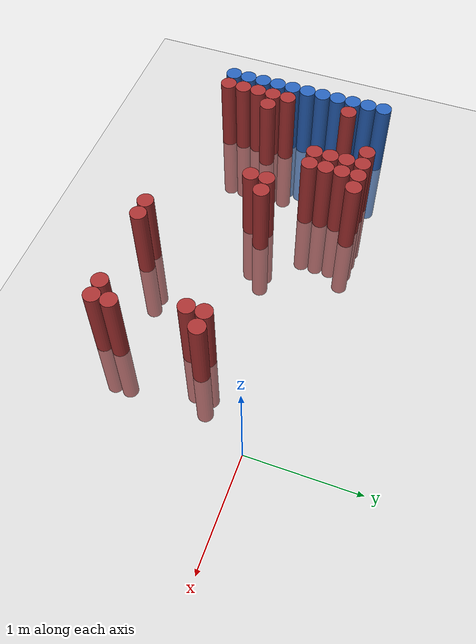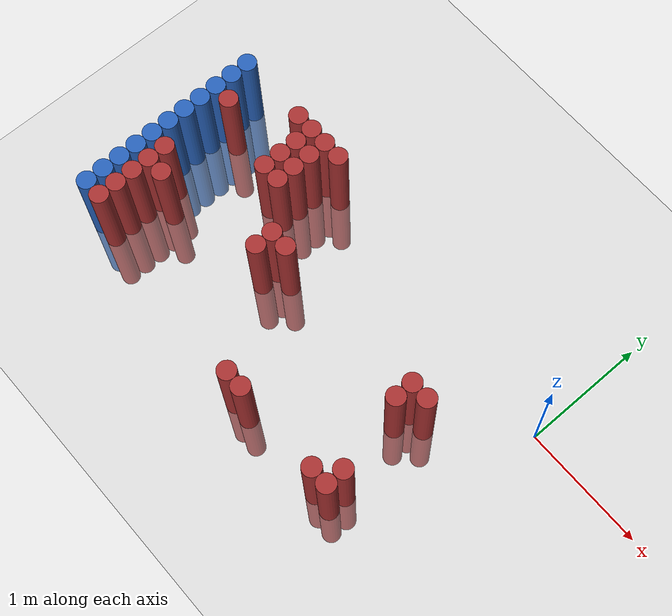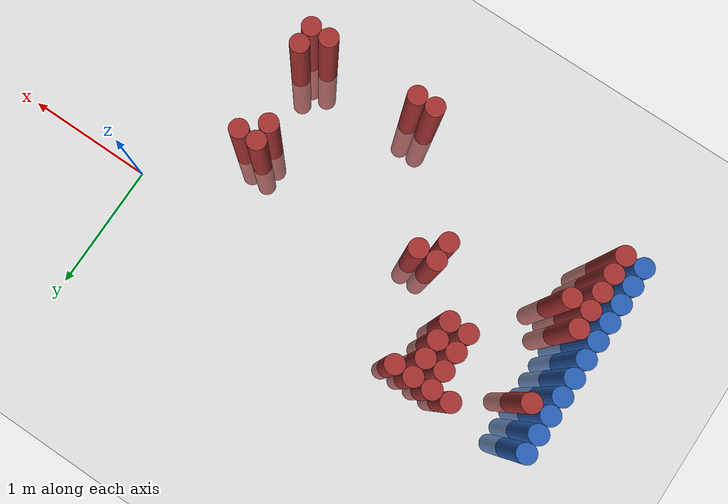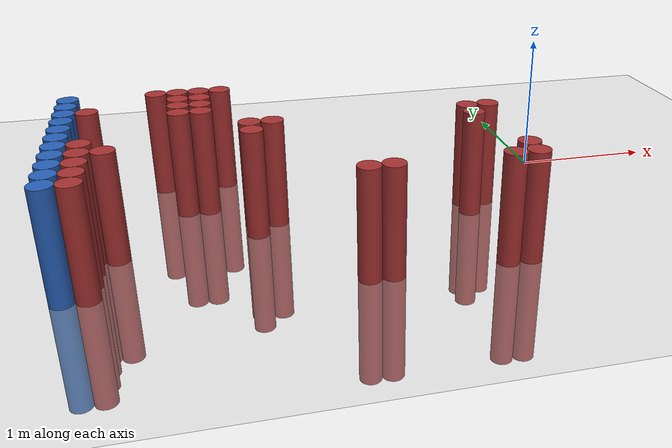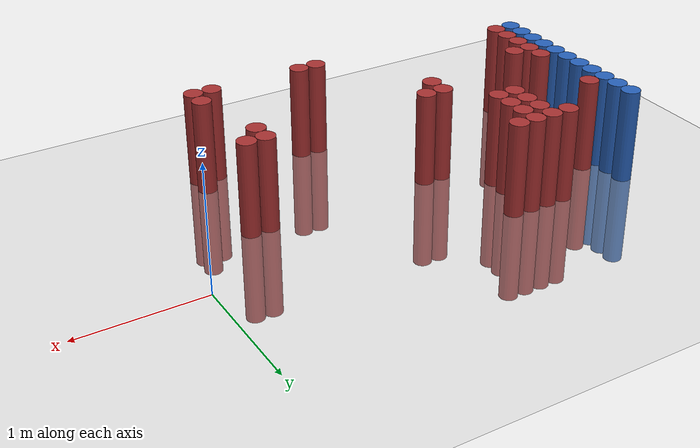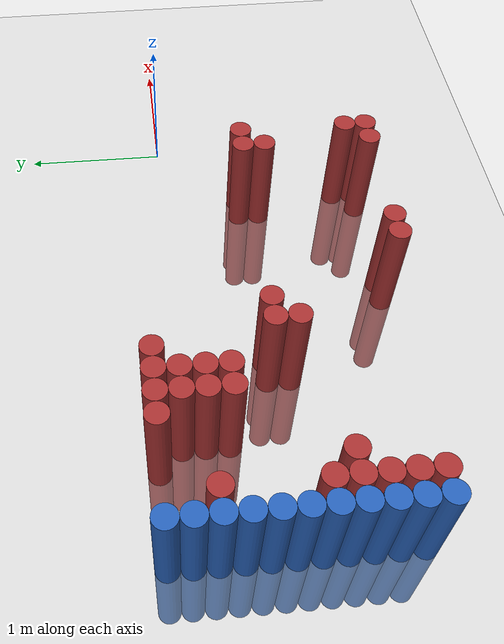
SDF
<sdf version="1.6">
 <world name="default">
  <model name="ground_plane">
   <static>1</static>
   <link name="link">
    <collision name="collision">
     <geometry><plane><normal>0 0 1</normal><size>100 100</size></plane></geometry>
     <surface><friction><ode><mu>100</mu><mu2>50</mu2></ode></friction></surface>
    </collision>
    <visual name="visual">
     <cast_shadows>0</cast_shadows>
     <geometry><plane><normal>0 0 1</normal><size>100 100</size></plane></geometry>
     <material>
      <script><uri>file://media/materials/scripts/gazebo.material</uri><name>Gazebo/Grey</name></script>
     </material>
    </visual>
   </link>
  </model>
  <model name="unit_cylinder_97">
   <static>1</static>
   <pose>-3.425000 -1.325000 0.000000 0.000000 0.000000 0.000000</pose>
   <link name="link">
    <inertial>
     <mass>1</mass>
     <inertia><ixx>0.145833</ixx><ixy>0</ixy><ixz>0</ixz><iyy>0.145833</iyy><iyz>0</iyz><izz>0.125</izz></inertia>
    </inertial>
    <collision name="collision">
     <geometry><cylinder><radius>0.075000</radius><length>1.5</length></cylinder></geometry>
    </collision>
    <visual name="visual">
     <geometry><cylinder><radius>0.075000</radius><length>1.5</length></cylinder></geometry>
     <material>
      <ambient>0.152000 0.379000 0.720000 1</ambient>
      <diffuse>0.152000 0.379000 0.720000 1</diffuse>
     </material>
     <material>
      <script><name>Gazebo/Grey</name><uri>file://media/materials/scripts/gazebo.material</uri></script>
     </material>
    </visual>
   </link>
  </model>
  <model name="unit_cylinder_99">
   <static>1</static>
   <pose>-3.425000 -1.175000 0.000000 0.000000 0.000000 0.000000</pose>
   <link name="link">
    <inertial>
     <mass>1</mass>
     <inertia><ixx>0.145833</ixx><ixy>0</ixy><ixz>0</ixz><iyy>0.145833</iyy><iyz>0</iyz><izz>0.125</izz></inertia>
    </inertial>
    <collision name="collision">
     <geometry><cylinder><radius>0.075000</radius><length>1.5</length></cylinder></geometry>
    </collision>
    <visual name="visual">
     <geometry><cylinder><radius>0.075000</radius><length>1.5</length></cylinder></geometry>
     <material>
      <ambient>0.152000 0.379000 0.720000 1</ambient>
      <diffuse>0.152000 0.379000 0.720000 1</diffuse>
     </material>
     <material>
      <script><name>Gazebo/Grey</name><uri>file://media/materials/scripts/gazebo.material</uri></script>
     </material>
    </visual>
   </link>
  </model>
  <model name="unit_cylinder_101">
   <static>1</static>
   <pose>-3.425000 -1.025000 0.000000 0.000000 0.000000 0.000000</pose>
   <link name="link">
    <inertial>
     <mass>1</mass>
     <inertia><ixx>0.145833</ixx><ixy>0</ixy><ixz>0</ixz><iyy>0.145833</iyy><iyz>0</iyz><izz>0.125</izz></inertia>
    </inertial>
    <collision name="collision">
     <geometry><cylinder><radius>0.075000</radius><length>1.5</length></cylinder></geometry>
    </collision>
    <visual name="visual">
     <geometry><cylinder><radius>0.075000</radius><length>1.5</length></cylinder></geometry>
     <material>
      <ambient>0.152000 0.379000 0.720000 1</ambient>
      <diffuse>0.152000 0.379000 0.720000 1</diffuse>
     </material>
     <material>
      <script><name>Gazebo/Grey</name><uri>file://media/materials/scripts/gazebo.material</uri></script>
     </material>
    </visual>
   </link>
  </model>
  <model name="unit_cylinder_103">
   <static>1</static>
   <pose>-3.425000 -0.875000 0.000000 0.000000 0.000000 0.000000</pose>
   <link name="link">
    <inertial>
     <mass>1</mass>
     <inertia><ixx>0.145833</ixx><ixy>0</ixy><ixz>0</ixz><iyy>0.145833</iyy><iyz>0</iyz><izz>0.125</izz></inertia>
    </inertial>
    <collision name="collision">
     <geometry><cylinder><radius>0.075000</radius><length>1.5</length></cylinder></geometry>
    </collision>
    <visual name="visual">
     <geometry><cylinder><radius>0.075000</radius><length>1.5</length></cylinder></geometry>
     <material>
      <ambient>0.152000 0.379000 0.720000 1</ambient>
      <diffuse>0.152000 0.379000 0.720000 1</diffuse>
     </material>
     <material>
      <script><name>Gazebo/Grey</name><uri>file://media/materials/scripts/gazebo.material</uri></script>
     </material>
    </visual>
   </link>
  </model>
  <model name="unit_cylinder_105">
   <static>1</static>
   <pose>-3.425000 -0.725000 0.000000 0.000000 0.000000 0.000000</pose>
   <link name="link">
    <inertial>
     <mass>1</mass>
     <inertia><ixx>0.145833</ixx><ixy>0</ixy><ixz>0</ixz><iyy>0.145833</iyy><iyz>0</iyz><izz>0.125</izz></inertia>
    </inertial>
    <collision name="collision">
     <geometry><cylinder><radius>0.075000</radius><length>1.5</length></cylinder></geometry>
    </collision>
    <visual name="visual">
     <geometry><cylinder><radius>0.075000</radius><length>1.5</length></cylinder></geometry>
     <material>
      <ambient>0.152000 0.379000 0.720000 1</ambient>
      <diffuse>0.152000 0.379000 0.720000 1</diffuse>
     </material>
     <material>
      <script><name>Gazebo/Grey</name><uri>file://media/materials/scripts/gazebo.material</uri></script>
     </material>
    </visual>
   </link>
  </model>
  <model name="unit_cylinder_107">
   <static>1</static>
   <pose>-3.425000 -0.575000 0.000000 0.000000 0.000000 0.000000</pose>
   <link name="link">
    <inertial>
     <mass>1</mass>
     <inertia><ixx>0.145833</ixx><ixy>0</ixy><ixz>0</ixz><iyy>0.145833</iyy><iyz>0</iyz><izz>0.125</izz></inertia>
    </inertial>
    <collision name="collision">
     <geometry><cylinder><radius>0.075000</radius><length>1.5</length></cylinder></geometry>
    </collision>
    <visual name="visual">
     <geometry><cylinder><radius>0.075000</radius><length>1.5</length></cylinder></geometry>
     <material>
      <ambient>0.152000 0.379000 0.720000 1</ambient>
      <diffuse>0.152000 0.379000 0.720000 1</diffuse>
     </material>
     <material>
      <script><name>Gazebo/Grey</name><uri>file://media/materials/scripts/gazebo.material</uri></script>
     </material>
    </visual>
   </link>
  </model>
  <model name="unit_cylinder_109">
   <static>1</static>
   <pose>-3.425000 -0.425000 0.000000 0.000000 0.000000 0.000000</pose>
   <link name="link">
    <inertial>
     <mass>1</mass>
     <inertia><ixx>0.145833</ixx><ixy>0</ixy><ixz>0</ixz><iyy>0.145833</iyy><iyz>0</iyz><izz>0.125</izz></inertia>
    </inertial>
    <collision name="collision">
     <geometry><cylinder><radius>0.075000</radius><length>1.5</length></cylinder></geometry>
    </collision>
    <visual name="visual">
     <geometry><cylinder><radius>0.075000</radius><length>1.5</length></cylinder></geometry>
     <material>
      <ambient>0.152000 0.379000 0.720000 1</ambient>
      <diffuse>0.152000 0.379000 0.720000 1</diffuse>
     </material>
     <material>
      <script><name>Gazebo/Grey</name><uri>file://media/materials/scripts/gazebo.material</uri></script>
     </material>
    </visual>
   </link>
  </model>
  <model name="unit_cylinder_111">
   <static>1</static>
   <pose>-3.425000 -0.275000 0.000000 0.000000 0.000000 0.000000</pose>
   <link name="link">
    <inertial>
     <mass>1</mass>
     <inertia><ixx>0.145833</ixx><ixy>0</ixy><ixz>0</ixz><iyy>0.145833</iyy><iyz>0</iyz><izz>0.125</izz></inertia>
    </inertial>
    <collision name="collision">
     <geometry><cylinder><radius>0.075000</radius><length>1.5</length></cylinder></geometry>
    </collision>
    <visual name="visual">
     <geometry><cylinder><radius>0.075000</radius><length>1.5</length></cylinder></geometry>
     <material>
      <ambient>0.152000 0.379000 0.720000 1</ambient>
      <diffuse>0.152000 0.379000 0.720000 1</diffuse>
     </material>
     <material>
      <script><name>Gazebo/Grey</name><uri>file://media/materials/scripts/gazebo.material</uri></script>
     </material>
    </visual>
   </link>
  </model>
  <model name="unit_cylinder_113">
   <static>1</static>
   <pose>-3.425000 -0.125000 0.000000 0.000000 0.000000 0.000000</pose>
   <link name="link">
    <inertial>
     <mass>1</mass>
     <inertia><ixx>0.145833</ixx><ixy>0</ixy><ixz>0</ixz><iyy>0.145833</iyy><iyz>0</iyz><izz>0.125</izz></inertia>
    </inertial>
    <collision name="collision">
     <geometry><cylinder><radius>0.075000</radius><length>1.5</length></cylinder></geometry>
    </collision>
    <visual name="visual">
     <geometry><cylinder><radius>0.075000</radius><length>1.5</length></cylinder></geometry>
     <material>
      <ambient>0.152000 0.379000 0.720000 1</ambient>
      <diffuse>0.152000 0.379000 0.720000 1</diffuse>
     </material>
     <material>
      <script><name>Gazebo/Grey</name><uri>file://media/materials/scripts/gazebo.material</uri></script>
     </material>
    </visual>
   </link>
  </model>
  <model name="unit_cylinder_115">
   <static>1</static>
   <pose>-3.425000 0.025000 0.000000 0.000000 0.000000 0.000000</pose>
   <link name="link">
    <inertial>
     <mass>1</mass>
     <inertia><ixx>0.145833</ixx><ixy>0</ixy><ixz>0</ixz><iyy>0.145833</iyy><iyz>0</iyz><izz>0.125</izz></inertia>
    </inertial>
    <collision name="collision">
     <geometry><cylinder><radius>0.075000</radius><length>1.5</length></cylinder></geometry>
    </collision>
    <visual name="visual">
     <geometry><cylinder><radius>0.075000</radius><length>1.5</length></cylinder></geometry>
     <material>
      <ambient>0.152000 0.379000 0.720000 1</ambient>
      <diffuse>0.152000 0.379000 0.720000 1</diffuse>
     </material>
     <material>
      <script><name>Gazebo/Grey</name><uri>file://media/materials/scripts/gazebo.material</uri></script>
     </material>
    </visual>
   </link>
  </model>
  <model name="unit_cylinder_117">
   <static>1</static>
   <pose>-3.425000 0.175000 0.000000 0.000000 0.000000 0.000000</pose>
   <link name="link">
    <inertial>
     <mass>1</mass>
     <inertia><ixx>0.145833</ixx><ixy>0</ixy><ixz>0</ixz><iyy>0.145833</iyy><iyz>0</iyz><izz>0.125</izz></inertia>
    </inertial>
    <collision name="collision">
     <geometry><cylinder><radius>0.075000</radius><length>1.5</length></cylinder></geometry>
    </collision>
    <visual name="visual">
     <geometry><cylinder><radius>0.075000</radius><length>1.5</length></cylinder></geometry>
     <material>
      <ambient>0.152000 0.379000 0.720000 1</ambient>
      <diffuse>0.152000 0.379000 0.720000 1</diffuse>
     </material>
     <material>
      <script><name>Gazebo/Grey</name><uri>file://media/materials/scripts/gazebo.material</uri></script>
     </material>
    </visual>
   </link>
  </model>
  <model name="unit_cylinder_212">
   <static>1</static>
   <pose>-3.425000 -1.325000 0.000000 0.000000 0.000000 0.000000</pose>
   <link name="link">
    <inertial>
     <mass>1</mass>
     <inertia><ixx>0.145833</ixx><ixy>0</ixy><ixz>0</ixz><iyy>0.145833</iyy><iyz>0</iyz><izz>0.125</izz></inertia>
    </inertial>
    <collision name="collision">
     <geometry><cylinder><radius>0.075000</radius><length>1.5</length></cylinder></geometry>
    </collision>
    <visual name="visual">
     <geometry><cylinder><radius>0.075000</radius><length>1.5</length></cylinder></geometry>
     <material>
      <ambient>0.152000 0.379000 0.720000 1</ambient>
      <diffuse>0.152000 0.379000 0.720000 1</diffuse>
     </material>
     <material>
      <script><name>Gazebo/Grey</name><uri>file://media/materials/scripts/gazebo.material</uri></script>
     </material>
    </visual>
   </link>
  </model>
  <model name="unit_cylinder_213">
   <static>1</static>
   <pose>-3.425000 -1.175000 0.000000 0.000000 0.000000 0.000000</pose>
   <link name="link">
    <inertial>
     <mass>1</mass>
     <inertia><ixx>0.145833</ixx><ixy>0</ixy><ixz>0</ixz><iyy>0.145833</iyy><iyz>0</iyz><izz>0.125</izz></inertia>
    </inertial>
    <collision name="collision">
     <geometry><cylinder><radius>0.075000</radius><length>1.5</length></cylinder></geometry>
    </collision>
    <visual name="visual">
     <geometry><cylinder><radius>0.075000</radius><length>1.5</length></cylinder></geometry>
     <material>
      <ambient>0.152000 0.379000 0.720000 1</ambient>
      <diffuse>0.152000 0.379000 0.720000 1</diffuse>
     </material>
     <material>
      <script><name>Gazebo/Grey</name><uri>file://media/materials/scripts/gazebo.material</uri></script>
     </material>
    </visual>
   </link>
  </model>
  <model name="unit_cylinder_214">
   <static>1</static>
   <pose>-3.425000 -1.025000 0.000000 0.000000 0.000000 0.000000</pose>
   <link name="link">
    <inertial>
     <mass>1</mass>
     <inertia><ixx>0.145833</ixx><ixy>0</ixy><ixz>0</ixz><iyy>0.145833</iyy><iyz>0</iyz><izz>0.125</izz></inertia>
    </inertial>
    <collision name="collision">
     <geometry><cylinder><radius>0.075000</radius><length>1.5</length></cylinder></geometry>
    </collision>
    <visual name="visual">
     <geometry><cylinder><radius>0.075000</radius><length>1.5</length></cylinder></geometry>
     <material>
      <ambient>0.152000 0.379000 0.720000 1</ambient>
      <diffuse>0.152000 0.379000 0.720000 1</diffuse>
     </material>
     <material>
      <script><name>Gazebo/Grey</name><uri>file://media/materials/scripts/gazebo.material</uri></script>
     </material>
    </visual>
   </link>
  </model>
  <model name="unit_cylinder_215">
   <static>1</static>
   <pose>-3.425000 -0.875000 0.000000 0.000000 0.000000 0.000000</pose>
   <link name="link">
    <inertial>
     <mass>1</mass>
     <inertia><ixx>0.145833</ixx><ixy>0</ixy><ixz>0</ixz><iyy>0.145833</iyy><iyz>0</iyz><izz>0.125</izz></inertia>
    </inertial>
    <collision name="collision">
     <geometry><cylinder><radius>0.075000</radius><length>1.5</length></cylinder></geometry>
    </collision>
    <visual name="visual">
     <geometry><cylinder><radius>0.075000</radius><length>1.5</length></cylinder></geometry>
     <material>
      <ambient>0.152000 0.379000 0.720000 1</ambient>
      <diffuse>0.152000 0.379000 0.720000 1</diffuse>
     </material>
     <material>
      <script><name>Gazebo/Grey</name><uri>file://media/materials/scripts/gazebo.material</uri></script>
     </material>
    </visual>
   </link>
  </model>
  <model name="unit_cylinder_216">
   <static>1</static>
   <pose>-3.425000 -0.725000 0.000000 0.000000 0.000000 0.000000</pose>
   <link name="link">
    <inertial>
     <mass>1</mass>
     <inertia><ixx>0.145833</ixx><ixy>0</ixy><ixz>0</ixz><iyy>0.145833</iyy><iyz>0</iyz><izz>0.125</izz></inertia>
    </inertial>
    <collision name="collision">
     <geometry><cylinder><radius>0.075000</radius><length>1.5</length></cylinder></geometry>
    </collision>
    <visual name="visual">
     <geometry><cylinder><radius>0.075000</radius><length>1.5</length></cylinder></geometry>
     <material>
      <ambient>0.152000 0.379000 0.720000 1</ambient>
      <diffuse>0.152000 0.379000 0.720000 1</diffuse>
     </material>
     <material>
      <script><name>Gazebo/Grey</name><uri>file://media/materials/scripts/gazebo.material</uri></script>
     </material>
    </visual>
   </link>
  </model>
  <model name="unit_cylinder_217">
   <static>1</static>
   <pose>-3.425000 -0.575000 0.000000 0.000000 0.000000 0.000000</pose>
   <link name="link">
    <inertial>
     <mass>1</mass>
     <inertia><ixx>0.145833</ixx><ixy>0</ixy><ixz>0</ixz><iyy>0.145833</iyy><iyz>0</iyz><izz>0.125</izz></inertia>
    </inertial>
    <collision name="collision">
     <geometry><cylinder><radius>0.075000</radius><length>1.5</length></cylinder></geometry>
    </collision>
    <visual name="visual">
     <geometry><cylinder><radius>0.075000</radius><length>1.5</length></cylinder></geometry>
     <material>
      <ambient>0.152000 0.379000 0.720000 1</ambient>
      <diffuse>0.152000 0.379000 0.720000 1</diffuse>
     </material>
     <material>
      <script><name>Gazebo/Grey</name><uri>file://media/materials/scripts/gazebo.material</uri></script>
     </material>
    </visual>
   </link>
  </model>
  <model name="unit_cylinder_218">
   <static>1</static>
   <pose>-3.425000 -0.425000 0.000000 0.000000 0.000000 0.000000</pose>
   <link name="link">
    <inertial>
     <mass>1</mass>
     <inertia><ixx>0.145833</ixx><ixy>0</ixy><ixz>0</ixz><iyy>0.145833</iyy><iyz>0</iyz><izz>0.125</izz></inertia>
    </inertial>
    <collision name="collision">
     <geometry><cylinder><radius>0.075000</radius><length>1.5</length></cylinder></geometry>
    </collision>
    <visual name="visual">
     <geometry><cylinder><radius>0.075000</radius><length>1.5</length></cylinder></geometry>
     <material>
      <ambient>0.152000 0.379000 0.720000 1</ambient>
      <diffuse>0.152000 0.379000 0.720000 1</diffuse>
     </material>
     <material>
      <script><name>Gazebo/Grey</name><uri>file://media/materials/scripts/gazebo.material</uri></script>
     </material>
    </visual>
   </link>
  </model>
  <model name="unit_cylinder_219">
   <static>1</static>
   <pose>-3.425000 -0.275000 0.000000 0.000000 0.000000 0.000000</pose>
   <link name="link">
    <inertial>
     <mass>1</mass>
     <inertia><ixx>0.145833</ixx><ixy>0</ixy><ixz>0</ixz><iyy>0.145833</iyy><iyz>0</iyz><izz>0.125</izz></inertia>
    </inertial>
    <collision name="collision">
     <geometry><cylinder><radius>0.075000</radius><length>1.5</length></cylinder></geometry>
    </collision>
    <visual name="visual">
     <geometry><cylinder><radius>0.075000</radius><length>1.5</length></cylinder></geometry>
     <material>
      <ambient>0.152000 0.379000 0.720000 1</ambient>
      <diffuse>0.152000 0.379000 0.720000 1</diffuse>
     </material>
     <material>
      <script><name>Gazebo/Grey</name><uri>file://media/materials/scripts/gazebo.material</uri></script>
     </material>
    </visual>
   </link>
  </model>
  <model name="unit_cylinder_220">
   <static>1</static>
   <pose>-3.425000 -0.125000 0.000000 0.000000 0.000000 0.000000</pose>
   <link name="link">
    <inertial>
     <mass>1</mass>
     <inertia><ixx>0.145833</ixx><ixy>0</ixy><ixz>0</ixz><iyy>0.145833</iyy><iyz>0</iyz><izz>0.125</izz></inertia>
    </inertial>
    <collision name="collision">
     <geometry><cylinder><radius>0.075000</radius><length>1.5</length></cylinder></geometry>
    </collision>
    <visual name="visual">
     <geometry><cylinder><radius>0.075000</radius><length>1.5</length></cylinder></geometry>
     <material>
      <ambient>0.152000 0.379000 0.720000 1</ambient>
      <diffuse>0.152000 0.379000 0.720000 1</diffuse>
     </material>
     <material>
      <script><name>Gazebo/Grey</name><uri>file://media/materials/scripts/gazebo.material</uri></script>
     </material>
    </visual>
   </link>
  </model>
  <model name="unit_cylinder_221">
   <static>1</static>
   <pose>-3.425000 0.025000 0.000000 0.000000 0.000000 0.000000</pose>
   <link name="link">
    <inertial>
     <mass>1</mass>
     <inertia><ixx>0.145833</ixx><ixy>0</ixy><ixz>0</ixz><iyy>0.145833</iyy><iyz>0</iyz><izz>0.125</izz></inertia>
    </inertial>
    <collision name="collision">
     <geometry><cylinder><radius>0.075000</radius><length>1.5</length></cylinder></geometry>
    </collision>
    <visual name="visual">
     <geometry><cylinder><radius>0.075000</radius><length>1.5</length></cylinder></geometry>
     <material>
      <ambient>0.152000 0.379000 0.720000 1</ambient>
      <diffuse>0.152000 0.379000 0.720000 1</diffuse>
     </material>
     <material>
      <script><name>Gazebo/Grey</name><uri>file://media/materials/scripts/gazebo.material</uri></script>
     </material>
    </visual>
   </link>
  </model>
  <model name="unit_cylinder_222">
   <static>1</static>
   <pose>-3.425000 0.175000 0.000000 0.000000 0.000000 0.000000</pose>
   <link name="link">
    <inertial>
     <mass>1</mass>
     <inertia><ixx>0.145833</ixx><ixy>0</ixy><ixz>0</ixz><iyy>0.145833</iyy><iyz>0</iyz><izz>0.125</izz></inertia>
    </inertial>
    <collision name="collision">
     <geometry><cylinder><radius>0.075000</radius><length>1.5</length></cylinder></geometry>
    </collision>
    <visual name="visual">
     <geometry><cylinder><radius>0.075000</radius><length>1.5</length></cylinder></geometry>
     <material>
      <ambient>0.152000 0.379000 0.720000 1</ambient>
      <diffuse>0.152000 0.379000 0.720000 1</diffuse>
     </material>
     <material>
      <script><name>Gazebo/Grey</name><uri>file://media/materials/scripts/gazebo.material</uri></script>
     </material>
    </visual>
   </link>
  </model>
  <model name="unit_cylinder_258">
   <static>1</static>
   <pose>-3.275000 -1.325000 0.000000 0.000000 0.000000 0.000000</pose>
   <link name="link">
    <inertial>
     <mass>1</mass>
     <inertia><ixx>0.145833</ixx><ixy>0</ixy><ixz>0</ixz><iyy>0.145833</iyy><iyz>0</iyz><izz>0.125</izz></inertia>
    </inertial>
    <collision name="collision">
     <geometry><cylinder><radius>0.075000</radius><length>1.5</length></cylinder></geometry>
    </collision>
    <visual name="visual">
     <geometry><cylinder><radius>0.075000</radius><length>1.5</length></cylinder></geometry>
     <material>
      <ambient>0.648000 0.192000 0.192000 1</ambient>
      <diffuse>0.648000 0.192000 0.192000 1</diffuse>
     </material>
     <material>
      <script><name>Gazebo/Grey</name><uri>file://media/materials/scripts/gazebo.material</uri></script>
     </material>
    </visual>
   </link>
  </model>
  <model name="unit_cylinder_259">
   <static>1</static>
   <pose>-3.275000 -1.175000 0.000000 0.000000 0.000000 0.000000</pose>
   <link name="link">
    <inertial>
     <mass>1</mass>
     <inertia><ixx>0.145833</ixx><ixy>0</ixy><ixz>0</ixz><iyy>0.145833</iyy><iyz>0</iyz><izz>0.125</izz></inertia>
    </inertial>
    <collision name="collision">
     <geometry><cylinder><radius>0.075000</radius><length>1.5</length></cylinder></geometry>
    </collision>
    <visual name="visual">
     <geometry><cylinder><radius>0.075000</radius><length>1.5</length></cylinder></geometry>
     <material>
      <ambient>0.648000 0.192000 0.192000 1</ambient>
      <diffuse>0.648000 0.192000 0.192000 1</diffuse>
     </material>
     <material>
      <script><name>Gazebo/Grey</name><uri>file://media/materials/scripts/gazebo.material</uri></script>
     </material>
    </visual>
   </link>
  </model>
  <model name="unit_cylinder_260">
   <static>1</static>
   <pose>-3.275000 -1.025000 0.000000 0.000000 0.000000 0.000000</pose>
   <link name="link">
    <inertial>
     <mass>1</mass>
     <inertia><ixx>0.145833</ixx><ixy>0</ixy><ixz>0</ixz><iyy>0.145833</iyy><iyz>0</iyz><izz>0.125</izz></inertia>
    </inertial>
    <collision name="collision">
     <geometry><cylinder><radius>0.075000</radius><length>1.5</length></cylinder></geometry>
    </collision>
    <visual name="visual">
     <geometry><cylinder><radius>0.075000</radius><length>1.5</length></cylinder></geometry>
     <material>
      <ambient>0.648000 0.192000 0.192000 1</ambient>
      <diffuse>0.648000 0.192000 0.192000 1</diffuse>
     </material>
     <material>
      <script><name>Gazebo/Grey</name><uri>file://media/materials/scripts/gazebo.material</uri></script>
     </material>
    </visual>
   </link>
  </model>
  <model name="unit_cylinder_261">
   <static>1</static>
   <pose>-3.275000 -0.875000 0.000000 0.000000 0.000000 0.000000</pose>
   <link name="link">
    <inertial>
     <mass>1</mass>
     <inertia><ixx>0.145833</ixx><ixy>0</ixy><ixz>0</ixz><iyy>0.145833</iyy><iyz>0</iyz><izz>0.125</izz></inertia>
    </inertial>
    <collision name="collision">
     <geometry><cylinder><radius>0.075000</radius><length>1.5</length></cylinder></geometry>
    </collision>
    <visual name="visual">
     <geometry><cylinder><radius>0.075000</radius><length>1.5</length></cylinder></geometry>
     <material>
      <ambient>0.648000 0.192000 0.192000 1</ambient>
      <diffuse>0.648000 0.192000 0.192000 1</diffuse>
     </material>
     <material>
      <script><name>Gazebo/Grey</name><uri>file://media/materials/scripts/gazebo.material</uri></script>
     </material>
    </visual>
   </link>
  </model>
  <model name="unit_cylinder_262">
   <static>1</static>
   <pose>-3.275000 -0.725000 0.000000 0.000000 0.000000 0.000000</pose>
   <link name="link">
    <inertial>
     <mass>1</mass>
     <inertia><ixx>0.145833</ixx><ixy>0</ixy><ixz>0</ixz><iyy>0.145833</iyy><iyz>0</iyz><izz>0.125</izz></inertia>
    </inertial>
    <collision name="collision">
     <geometry><cylinder><radius>0.075000</radius><length>1.5</length></cylinder></geometry>
    </collision>
    <visual name="visual">
     <geometry><cylinder><radius>0.075000</radius><length>1.5</length></cylinder></geometry>
     <material>
      <ambient>0.648000 0.192000 0.192000 1</ambient>
      <diffuse>0.648000 0.192000 0.192000 1</diffuse>
     </material>
     <material>
      <script><name>Gazebo/Grey</name><uri>file://media/materials/scripts/gazebo.material</uri></script>
     </material>
    </visual>
   </link>
  </model>
  <model name="unit_cylinder_263">
   <static>1</static>
   <pose>-3.275000 -0.125000 0.000000 0.000000 0.000000 0.000000</pose>
   <link name="link">
    <inertial>
     <mass>1</mass>
     <inertia><ixx>0.145833</ixx><ixy>0</ixy><ixz>0</ixz><iyy>0.145833</iyy><iyz>0</iyz><izz>0.125</izz></inertia>
    </inertial>
    <collision name="collision">
     <geometry><cylinder><radius>0.075000</radius><length>1.5</length></cylinder></geometry>
    </collision>
    <visual name="visual">
     <geometry><cylinder><radius>0.075000</radius><length>1.5</length></cylinder></geometry>
     <material>
      <ambient>0.648000 0.192000 0.192000 1</ambient>
      <diffuse>0.648000 0.192000 0.192000 1</diffuse>
     </material>
     <material>
      <script><name>Gazebo/Grey</name><uri>file://media/materials/scripts/gazebo.material</uri></script>
     </material>
    </visual>
   </link>
  </model>
  <model name="unit_cylinder_276">
   <static>1</static>
   <pose>-3.125000 -0.875000 0.000000 0.000000 0.000000 0.000000</pose>
   <link name="link">
    <inertial>
     <mass>1</mass>
     <inertia><ixx>0.145833</ixx><ixy>0</ixy><ixz>0</ixz><iyy>0.145833</iyy><iyz>0</iyz><izz>0.125</izz></inertia>
    </inertial>
    <collision name="collision">
     <geometry><cylinder><radius>0.075000</radius><length>1.5</length></cylinder></geometry>
    </collision>
    <visual name="visual">
     <geometry><cylinder><radius>0.075000</radius><length>1.5</length></cylinder></geometry>
     <material>
      <ambient>0.648000 0.192000 0.192000 1</ambient>
      <diffuse>0.648000 0.192000 0.192000 1</diffuse>
     </material>
     <material>
      <script><name>Gazebo/Grey</name><uri>file://media/materials/scripts/gazebo.material</uri></script>
     </material>
    </visual>
   </link>
  </model>
  <model name="unit_cylinder_284">
   <static>1</static>
   <pose>-2.825000 0.175000 0.000000 0.000000 0.000000 0.000000</pose>
   <link name="link">
    <inertial>
     <mass>1</mass>
     <inertia><ixx>0.145833</ixx><ixy>0</ixy><ixz>0</ixz><iyy>0.145833</iyy><iyz>0</iyz><izz>0.125</izz></inertia>
    </inertial>
    <collision name="collision">
     <geometry><cylinder><radius>0.075000</radius><length>1.5</length></cylinder></geometry>
    </collision>
    <visual name="visual">
     <geometry><cylinder><radius>0.075000</radius><length>1.5</length></cylinder></geometry>
     <material>
      <ambient>0.648000 0.192000 0.192000 1</ambient>
      <diffuse>0.648000 0.192000 0.192000 1</diffuse>
     </material>
     <material>
      <script><name>Gazebo/Grey</name><uri>file://media/materials/scripts/gazebo.material</uri></script>
     </material>
    </visual>
   </link>
  </model>
  <model name="unit_cylinder_287">
   <static>1</static>
   <pose>-2.675000 -0.275000 0.000000 0.000000 0.000000 0.000000</pose>
   <link name="link">
    <inertial>
     <mass>1</mass>
     <inertia><ixx>0.145833</ixx><ixy>0</ixy><ixz>0</ixz><iyy>0.145833</iyy><iyz>0</iyz><izz>0.125</izz></inertia>
    </inertial>
    <collision name="collision">
     <geometry><cylinder><radius>0.075000</radius><length>1.5</length></cylinder></geometry>
    </collision>
    <visual name="visual">
     <geometry><cylinder><radius>0.075000</radius><length>1.5</length></cylinder></geometry>
     <material>
      <ambient>0.648000 0.192000 0.192000 1</ambient>
      <diffuse>0.648000 0.192000 0.192000 1</diffuse>
     </material>
     <material>
      <script><name>Gazebo/Grey</name><uri>file://media/materials/scripts/gazebo.material</uri></script>
     </material>
    </visual>
   </link>
  </model>
  <model name="unit_cylinder_288">
   <static>1</static>
   <pose>-2.675000 -0.125000 0.000000 0.000000 0.000000 0.000000</pose>
   <link name="link">
    <inertial>
     <mass>1</mass>
     <inertia><ixx>0.145833</ixx><ixy>0</ixy><ixz>0</ixz><iyy>0.145833</iyy><iyz>0</iyz><izz>0.125</izz></inertia>
    </inertial>
    <collision name="collision">
     <geometry><cylinder><radius>0.075000</radius><length>1.5</length></cylinder></geometry>
    </collision>
    <visual name="visual">
     <geometry><cylinder><radius>0.075000</radius><length>1.5</length></cylinder></geometry>
     <material>
      <ambient>0.648000 0.192000 0.192000 1</ambient>
      <diffuse>0.648000 0.192000 0.192000 1</diffuse>
     </material>
     <material>
      <script><name>Gazebo/Grey</name><uri>file://media/materials/scripts/gazebo.material</uri></script>
     </material>
    </visual>
   </link>
  </model>
  <model name="unit_cylinder_289">
   <static>1</static>
   <pose>-2.675000 0.025000 0.000000 0.000000 0.000000 0.000000</pose>
   <link name="link">
    <inertial>
     <mass>1</mass>
     <inertia><ixx>0.145833</ixx><ixy>0</ixy><ixz>0</ixz><iyy>0.145833</iyy><iyz>0</iyz><izz>0.125</izz></inertia>
    </inertial>
    <collision name="collision">
     <geometry><cylinder><radius>0.075000</radius><length>1.5</length></cylinder></geometry>
    </collision>
    <visual name="visual">
     <geometry><cylinder><radius>0.075000</radius><length>1.5</length></cylinder></geometry>
     <material>
      <ambient>0.648000 0.192000 0.192000 1</ambient>
      <diffuse>0.648000 0.192000 0.192000 1</diffuse>
     </material>
     <material>
      <script><name>Gazebo/Grey</name><uri>file://media/materials/scripts/gazebo.material</uri></script>
     </material>
    </visual>
   </link>
  </model>
  <model name="unit_cylinder_290">
   <static>1</static>
   <pose>-2.675000 0.175000 0.000000 0.000000 0.000000 0.000000</pose>
   <link name="link">
    <inertial>
     <mass>1</mass>
     <inertia><ixx>0.145833</ixx><ixy>0</ixy><ixz>0</ixz><iyy>0.145833</iyy><iyz>0</iyz><izz>0.125</izz></inertia>
    </inertial>
    <collision name="collision">
     <geometry><cylinder><radius>0.075000</radius><length>1.5</length></cylinder></geometry>
    </collision>
    <visual name="visual">
     <geometry><cylinder><radius>0.075000</radius><length>1.5</length></cylinder></geometry>
     <material>
      <ambient>0.648000 0.192000 0.192000 1</ambient>
      <diffuse>0.648000 0.192000 0.192000 1</diffuse>
     </material>
     <material>
      <script><name>Gazebo/Grey</name><uri>file://media/materials/scripts/gazebo.material</uri></script>
     </material>
    </visual>
   </link>
  </model>
  <model name="unit_cylinder_293">
   <static>1</static>
   <pose>-2.525000 -0.275000 0.000000 0.000000 0.000000 0.000000</pose>
   <link name="link">
    <inertial>
     <mass>1</mass>
     <inertia><ixx>0.145833</ixx><ixy>0</ixy><ixz>0</ixz><iyy>0.145833</iyy><iyz>0</iyz><izz>0.125</izz></inertia>
    </inertial>
    <collision name="collision">
     <geometry><cylinder><radius>0.075000</radius><length>1.5</length></cylinder></geometry>
    </collision>
    <visual name="visual">
     <geometry><cylinder><radius>0.075000</radius><length>1.5</length></cylinder></geometry>
     <material>
      <ambient>0.648000 0.192000 0.192000 1</ambient>
      <diffuse>0.648000 0.192000 0.192000 1</diffuse>
     </material>
     <material>
      <script><name>Gazebo/Grey</name><uri>file://media/materials/scripts/gazebo.material</uri></script>
     </material>
    </visual>
   </link>
  </model>
  <model name="unit_cylinder_294">
   <static>1</static>
   <pose>-2.525000 -0.125000 0.000000 0.000000 0.000000 0.000000</pose>
   <link name="link">
    <inertial>
     <mass>1</mass>
     <inertia><ixx>0.145833</ixx><ixy>0</ixy><ixz>0</ixz><iyy>0.145833</iyy><iyz>0</iyz><izz>0.125</izz></inertia>
    </inertial>
    <collision name="collision">
     <geometry><cylinder><radius>0.075000</radius><length>1.5</length></cylinder></geometry>
    </collision>
    <visual name="visual">
     <geometry><cylinder><radius>0.075000</radius><length>1.5</length></cylinder></geometry>
     <material>
      <ambient>0.648000 0.192000 0.192000 1</ambient>
      <diffuse>0.648000 0.192000 0.192000 1</diffuse>
     </material>
     <material>
      <script><name>Gazebo/Grey</name><uri>file://media/materials/scripts/gazebo.material</uri></script>
     </material>
    </visual>
   </link>
  </model>
  <model name="unit_cylinder_295">
   <static>1</static>
   <pose>-2.525000 0.025000 0.000000 0.000000 0.000000 0.000000</pose>
   <link name="link">
    <inertial>
     <mass>1</mass>
     <inertia><ixx>0.145833</ixx><ixy>0</ixy><ixz>0</ixz><iyy>0.145833</iyy><iyz>0</iyz><izz>0.125</izz></inertia>
    </inertial>
    <collision name="collision">
     <geometry><cylinder><radius>0.075000</radius><length>1.5</length></cylinder></geometry>
    </collision>
    <visual name="visual">
     <geometry><cylinder><radius>0.075000</radius><length>1.5</length></cylinder></geometry>
     <material>
      <ambient>0.648000 0.192000 0.192000 1</ambient>
      <diffuse>0.648000 0.192000 0.192000 1</diffuse>
     </material>
     <material>
      <script><name>Gazebo/Grey</name><uri>file://media/materials/scripts/gazebo.material</uri></script>
     </material>
    </visual>
   </link>
  </model>
  <model name="unit_cylinder_296">
   <static>1</static>
   <pose>-2.525000 0.175000 0.000000 0.000000 0.000000 0.000000</pose>
   <link name="link">
    <inertial>
     <mass>1</mass>
     <inertia><ixx>0.145833</ixx><ixy>0</ixy><ixz>0</ixz><iyy>0.145833</iyy><iyz>0</iyz><izz>0.125</izz></inertia>
    </inertial>
    <collision name="collision">
     <geometry><cylinder><radius>0.075000</radius><length>1.5</length></cylinder></geometry>
    </collision>
    <visual name="visual">
     <geometry><cylinder><radius>0.075000</radius><length>1.5</length></cylinder></geometry>
     <material>
      <ambient>0.648000 0.192000 0.192000 1</ambient>
      <diffuse>0.648000 0.192000 0.192000 1</diffuse>
     </material>
     <material>
      <script><name>Gazebo/Grey</name><uri>file://media/materials/scripts/gazebo.material</uri></script>
     </material>
    </visual>
   </link>
  </model>
  <model name="unit_cylinder_298">
   <static>1</static>
   <pose>-2.375000 0.175000 0.000000 0.000000 0.000000 0.000000</pose>
   <link name="link">
    <inertial>
     <mass>1</mass>
     <inertia><ixx>0.145833</ixx><ixy>0</ixy><ixz>0</ixz><iyy>0.145833</iyy><iyz>0</iyz><izz>0.125</izz></inertia>
    </inertial>
    <collision name="collision">
     <geometry><cylinder><radius>0.075000</radius><length>1.5</length></cylinder></geometry>
    </collision>
    <visual name="visual">
     <geometry><cylinder><radius>0.075000</radius><length>1.5</length></cylinder></geometry>
     <material>
      <ambient>0.648000 0.192000 0.192000 1</ambient>
      <diffuse>0.648000 0.192000 0.192000 1</diffuse>
     </material>
     <material>
      <script><name>Gazebo/Grey</name><uri>file://media/materials/scripts/gazebo.material</uri></script>
     </material>
    </visual>
   </link>
  </model>
  <model name="unit_cylinder_301">
   <static>1</static>
   <pose>-2.225000 -0.725000 0.000000 0.000000 0.000000 0.000000</pose>
   <link name="link">
    <inertial>
     <mass>1</mass>
     <inertia><ixx>0.145833</ixx><ixy>0</ixy><ixz>0</ixz><iyy>0.145833</iyy><iyz>0</iyz><izz>0.125</izz></inertia>
    </inertial>
    <collision name="collision">
     <geometry><cylinder><radius>0.075000</radius><length>1.5</length></cylinder></geometry>
    </collision>
    <visual name="visual">
     <geometry><cylinder><radius>0.075000</radius><length>1.5</length></cylinder></geometry>
     <material>
      <ambient>0.648000 0.192000 0.192000 1</ambient>
      <diffuse>0.648000 0.192000 0.192000 1</diffuse>
     </material>
     <material>
      <script><name>Gazebo/Grey</name><uri>file://media/materials/scripts/gazebo.material</uri></script>
     </material>
    </visual>
   </link>
  </model>
  <model name="unit_cylinder_302">
   <static>1</static>
   <pose>-2.225000 -0.575000 0.000000 0.000000 0.000000 0.000000</pose>
   <link name="link">
    <inertial>
     <mass>1</mass>
     <inertia><ixx>0.145833</ixx><ixy>0</ixy><ixz>0</ixz><iyy>0.145833</iyy><iyz>0</iyz><izz>0.125</izz></inertia>
    </inertial>
    <collision name="collision">
     <geometry><cylinder><radius>0.075000</radius><length>1.5</length></cylinder></geometry>
    </collision>
    <visual name="visual">
     <geometry><cylinder><radius>0.075000</radius><length>1.5</length></cylinder></geometry>
     <material>
      <ambient>0.648000 0.192000 0.192000 1</ambient>
      <diffuse>0.648000 0.192000 0.192000 1</diffuse>
     </material>
     <material>
      <script><name>Gazebo/Grey</name><uri>file://media/materials/scripts/gazebo.material</uri></script>
     </material>
    </visual>
   </link>
  </model>
  <model name="unit_cylinder_304">
   <static>1</static>
   <pose>-2.075000 -0.575000 0.000000 0.000000 0.000000 0.000000</pose>
   <link name="link">
    <inertial>
     <mass>1</mass>
     <inertia><ixx>0.145833</ixx><ixy>0</ixy><ixz>0</ixz><iyy>0.145833</iyy><iyz>0</iyz><izz>0.125</izz></inertia>
    </inertial>
    <collision name="collision">
     <geometry><cylinder><radius>0.075000</radius><length>1.5</length></cylinder></geometry>
    </collision>
    <visual name="visual">
     <geometry><cylinder><radius>0.075000</radius><length>1.5</length></cylinder></geometry>
     <material>
      <ambient>0.648000 0.192000 0.192000 1</ambient>
      <diffuse>0.648000 0.192000 0.192000 1</diffuse>
     </material>
     <material>
      <script><name>Gazebo/Grey</name><uri>file://media/materials/scripts/gazebo.material</uri></script>
     </material>
    </visual>
   </link>
  </model>
  <model name="unit_cylinder_317">
   <static>1</static>
   <pose>-1.625000 -1.475000 0.000000 0.000000 0.000000 0.000000</pose>
   <link name="link">
    <inertial>
     <mass>1</mass>
     <inertia><ixx>0.145833</ixx><ixy>0</ixy><ixz>0</ixz><iyy>0.145833</iyy><iyz>0</iyz><izz>0.125</izz></inertia>
    </inertial>
    <collision name="collision">
     <geometry><cylinder><radius>0.075000</radius><length>1.5</length></cylinder></geometry>
    </collision>
    <visual name="visual">
     <geometry><cylinder><radius>0.075000</radius><length>1.5</length></cylinder></geometry>
     <material>
      <ambient>0.648000 0.192000 0.192000 1</ambient>
      <diffuse>0.648000 0.192000 0.192000 1</diffuse>
     </material>
     <material>
      <script><name>Gazebo/Grey</name><uri>file://media/materials/scripts/gazebo.material</uri></script>
     </material>
    </visual>
   </link>
  </model>
  <model name="unit_cylinder_326">
   <static>1</static>
   <pose>-1.475000 -1.475000 0.000000 0.000000 0.000000 0.000000</pose>
   <link name="link">
    <inertial>
     <mass>1</mass>
     <inertia><ixx>0.145833</ixx><ixy>0</ixy><ixz>0</ixz><iyy>0.145833</iyy><iyz>0</iyz><izz>0.125</izz></inertia>
    </inertial>
    <collision name="collision">
     <geometry><cylinder><radius>0.075000</radius><length>1.5</length></cylinder></geometry>
    </collision>
    <visual name="visual">
     <geometry><cylinder><radius>0.075000</radius><length>1.5</length></cylinder></geometry>
     <material>
      <ambient>0.648000 0.192000 0.192000 1</ambient>
      <diffuse>0.648000 0.192000 0.192000 1</diffuse>
     </material>
     <material>
      <script><name>Gazebo/Grey</name><uri>file://media/materials/scripts/gazebo.material</uri></script>
     </material>
    </visual>
   </link>
  </model>
  <model name="unit_cylinder_330">
   <static>1</static>
   <pose>-0.725000 -1.475000 0.000000 0.000000 0.000000 0.000000</pose>
   <link name="link">
    <inertial>
     <mass>1</mass>
     <inertia><ixx>0.145833</ixx><ixy>0</ixy><ixz>0</ixz><iyy>0.145833</iyy><iyz>0</iyz><izz>0.125</izz></inertia>
    </inertial>
    <collision name="collision">
     <geometry><cylinder><radius>0.075000</radius><length>1.5</length></cylinder></geometry>
    </collision>
    <visual name="visual">
     <geometry><cylinder><radius>0.075000</radius><length>1.5</length></cylinder></geometry>
     <material>
      <ambient>0.648000 0.192000 0.192000 1</ambient>
      <diffuse>0.648000 0.192000 0.192000 1</diffuse>
     </material>
     <material>
      <script><name>Gazebo/Grey</name><uri>file://media/materials/scripts/gazebo.material</uri></script>
     </material>
    </visual>
   </link>
  </model>
  <model name="unit_cylinder_331">
   <static>1</static>
   <pose>-0.725000 -0.725000 0.000000 0.000000 0.000000 0.000000</pose>
   <link name="link">
    <inertial>
     <mass>1</mass>
     <inertia><ixx>0.145833</ixx><ixy>0</ixy><ixz>0</ixz><iyy>0.145833</iyy><iyz>0</iyz><izz>0.125</izz></inertia>
    </inertial>
    <collision name="collision">
     <geometry><cylinder><radius>0.075000</radius><length>1.5</length></cylinder></geometry>
    </collision>
    <visual name="visual">
     <geometry><cylinder><radius>0.075000</radius><length>1.5</length></cylinder></geometry>
     <material>
      <ambient>0.648000 0.192000 0.192000 1</ambient>
      <diffuse>0.648000 0.192000 0.192000 1</diffuse>
     </material>
     <material>
      <script><name>Gazebo/Grey</name><uri>file://media/materials/scripts/gazebo.material</uri></script>
     </material>
    </visual>
   </link>
  </model>
  <model name="unit_cylinder_332">
   <static>1</static>
   <pose>-0.725000 -0.575000 0.000000 0.000000 0.000000 0.000000</pose>
   <link name="link">
    <inertial>
     <mass>1</mass>
     <inertia><ixx>0.145833</ixx><ixy>0</ixy><ixz>0</ixz><iyy>0.145833</iyy><iyz>0</iyz><izz>0.125</izz></inertia>
    </inertial>
    <collision name="collision">
     <geometry><cylinder><radius>0.075000</radius><length>1.5</length></cylinder></geometry>
    </collision>
    <visual name="visual">
     <geometry><cylinder><radius>0.075000</radius><length>1.5</length></cylinder></geometry>
     <material>
      <ambient>0.648000 0.192000 0.192000 1</ambient>
      <diffuse>0.648000 0.192000 0.192000 1</diffuse>
     </material>
     <material>
      <script><name>Gazebo/Grey</name><uri>file://media/materials/scripts/gazebo.material</uri></script>
     </material>
    </visual>
   </link>
  </model>
  <model name="unit_cylinder_333">
   <static>1</static>
   <pose>-0.575000 -1.475000 0.000000 0.000000 0.000000 0.000000</pose>
   <link name="link">
    <inertial>
     <mass>1</mass>
     <inertia><ixx>0.145833</ixx><ixy>0</ixy><ixz>0</ixz><iyy>0.145833</iyy><iyz>0</iyz><izz>0.125</izz></inertia>
    </inertial>
    <collision name="collision">
     <geometry><cylinder><radius>0.075000</radius><length>1.5</length></cylinder></geometry>
    </collision>
    <visual name="visual">
     <geometry><cylinder><radius>0.075000</radius><length>1.5</length></cylinder></geometry>
     <material>
      <ambient>0.648000 0.192000 0.192000 1</ambient>
      <diffuse>0.648000 0.192000 0.192000 1</diffuse>
     </material>
     <material>
      <script><name>Gazebo/Grey</name><uri>file://media/materials/scripts/gazebo.material</uri></script>
     </material>
    </visual>
   </link>
  </model>
  <model name="unit_cylinder_334">
   <static>1</static>
   <pose>-0.575000 -1.325000 0.000000 0.000000 0.000000 0.000000</pose>
   <link name="link">
    <inertial>
     <mass>1</mass>
     <inertia><ixx>0.145833</ixx><ixy>0</ixy><ixz>0</ixz><iyy>0.145833</iyy><iyz>0</iyz><izz>0.125</izz></inertia>
    </inertial>
    <collision name="collision">
     <geometry><cylinder><radius>0.075000</radius><length>1.5</length></cylinder></geometry>
    </collision>
    <visual name="visual">
     <geometry><cylinder><radius>0.075000</radius><length>1.5</length></cylinder></geometry>
     <material>
      <ambient>0.648000 0.192000 0.192000 1</ambient>
      <diffuse>0.648000 0.192000 0.192000 1</diffuse>
     </material>
     <material>
      <script><name>Gazebo/Grey</name><uri>file://media/materials/scripts/gazebo.material</uri></script>
     </material>
    </visual>
   </link>
  </model>
  <model name="unit_cylinder_335">
   <static>1</static>
   <pose>-0.575000 -0.575000 0.000000 0.000000 0.000000 0.000000</pose>
   <link name="link">
    <inertial>
     <mass>1</mass>
     <inertia><ixx>0.145833</ixx><ixy>0</ixy><ixz>0</ixz><iyy>0.145833</iyy><iyz>0</iyz><izz>0.125</izz></inertia>
    </inertial>
    <collision name="collision">
     <geometry><cylinder><radius>0.075000</radius><length>1.5</length></cylinder></geometry>
    </collision>
    <visual name="visual">
     <geometry><cylinder><radius>0.075000</radius><length>1.5</length></cylinder></geometry>
     <material>
      <ambient>0.648000 0.192000 0.192000 1</ambient>
      <diffuse>0.648000 0.192000 0.192000 1</diffuse>
     </material>
     <material>
      <script><name>Gazebo/Grey</name><uri>file://media/materials/scripts/gazebo.material</uri></script>
     </material>
    </visual>
   </link>
  </model>
 </world>
</sdf>
